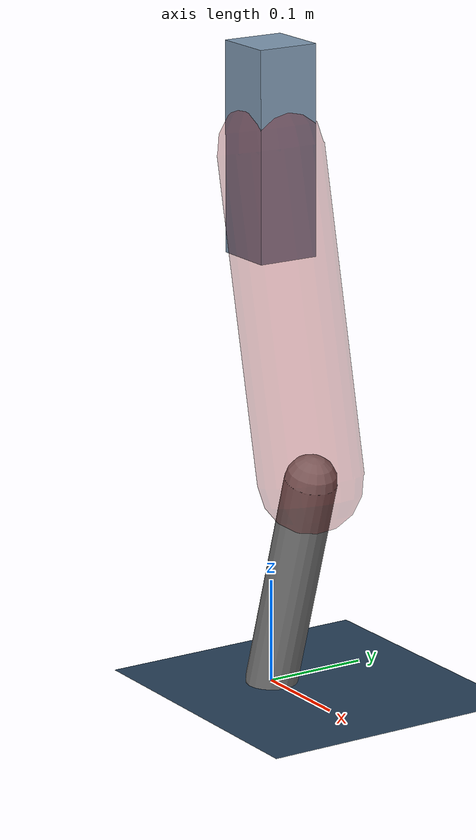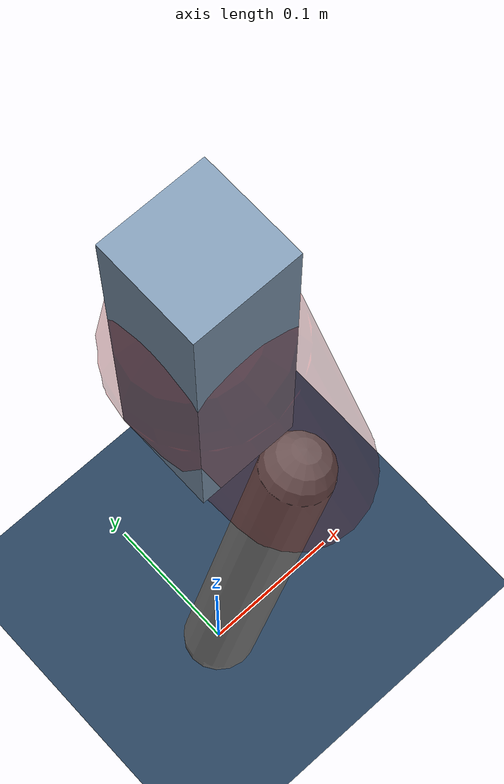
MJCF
<mujoco model="Hopper2D">
	<compiler inertiafromgeom="true" angle="radian" />
	<option timestep="0.001" integrator="implicit" cone="elliptic" solver="Newton" tolerance="1e-10" />

	<default>
		<geom contype="1" conaffinity="1" condim="3" friction="2 0.005 0.0001" solref="0.005 1" />
		<joint limited="true" damping="0.1" />
	</default>

	<asset>
		<texture name="skybox" type="skybox" builtin="gradient" rgb1=".4 .6 .8" rgb2="0 0 0" width="800" height="800" />
		<texture name="grid" type="2d" builtin="checker" rgb1=".1 .2 .3" rgb2=".2 .3 .4" width="300" height="300" mark="edge" markrgb=".2 .3 .4" />
		<material name="ground" texture="grid" texrepeat="1 1" texuniform="true" reflectance="0.1" />
		<material name="leg" rgba="0.5 0.6 0.7 1" />
	</asset>

	<worldbody>

		<geom name="floor" type="plane" size="5 5 0.25" material="ground" />

		<light directional="false" diffuse="0.8 0.8 0.8" specular="0.3 0.3 0.3" pos="0 0 2" dir="0 0 -1" />
		<light mode="targetbodycom" target="base" directional="false" diffuse="0.8 0.8 0.8" specular="0.3 0.3 0.3" pos="0 0 2" dir="0 0 -1" />

		<camera name="fixed" pos="0 -2 1" xyaxes="1 0 0 0 0 1" />
		<camera name="tracking" mode="trackcom" pos="0 -3 1" />

		<body name="root" pos="0 0 0.5183305547860275">
			<joint name="slide_x" type="slide" axis="1 0 0" range="-100 100" />
			<joint name="slide_z" type="slide" axis="0 0 1" range="0 10" />

			<body name="base" pos="0 0 0">
				<geom name="torso" type="box" size="0.03 0.03 0.1" mass="3.2960000000000003" material="leg" />

				<body name="link1" pos="0 0 0" euler="0 1.3503421776066735 0">
					<joint type="hinge" axis="0 -1 0" pos="0 0 0" name="hinge1" limited="true" range="-3.14 3.14" stiffness="0" damping="0.1" />
					<geom name="thigh" type="capsule" fromto="0 0 0 0.30932811515929337 0 0" size="0.05" rgba="0.5 0 0 0.3" mass="1.0140859109300921" />

					<body name="link2" pos="0.30932811515929337 0 0" euler="0 0.5232923888757557 0">
						<joint type="hinge" axis="0 -1 0" pos="0 0 0" name="hinge2" limited="true" range="-3.14 3.14" stiffness="0" damping="0.1" />
						<geom name="shank" type="capsule" fromto="0 0 0 0.22680996476737045 0 0" size="0.025" mass="0.42334797181389633" />

					</body>
				</body>
			</body>
		</body>
	</worldbody>

	<actuator>
		<motor name="torque1" joint="hinge1" ctrlrange="-115.70231926711958 115.70231926711958" ctrllimited="true" gear="1" />
		<motor name="torque2" joint="hinge2" ctrlrange="-89.44087549867497 89.44087549867497" ctrllimited="true" gear="1" />
	</actuator>
</mujoco>
